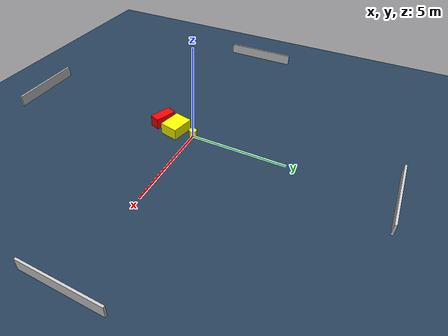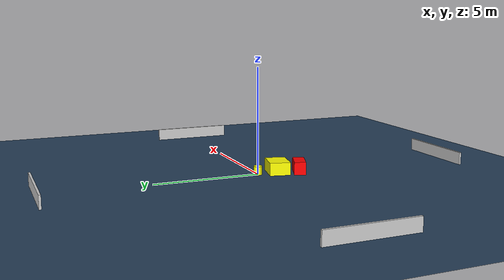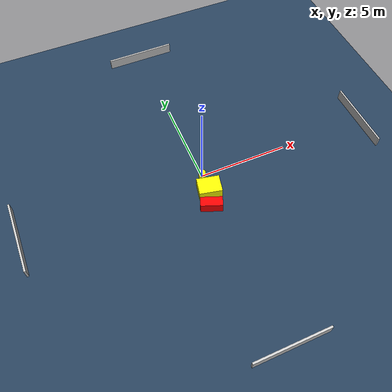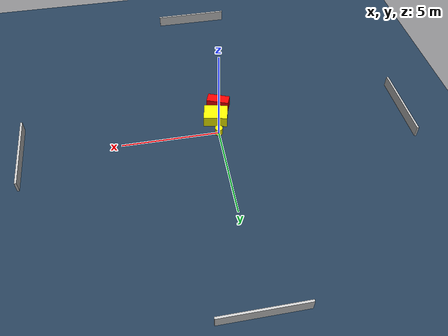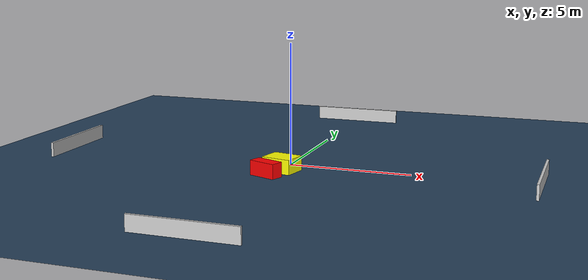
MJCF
<?xml version="1.0" ?>
<mujoco model="generated_environment">
  <option timestep="0.01" integrator="RK4" cone="elliptic"/>
  <default>
    <geom density="1"/>
  </default>
  <asset>
    <texture builtin="gradient" height="3072" name="skybox" rgb1="0.3 0.5 0.7" rgb2="0 0 0" type="skybox" width="512"/>
    <texture builtin="checker" height="300" name="groundplane" rgb1="0.2 0.3 0.4" rgb2="0.1 0.2 0.3" type="2d" width="300"/>
    <material name="groundplane" reflectance="0.2" texrepeat="5 5" texture="groundplane"/>
  </asset>
  <worldbody>
    <light dir="0 0 -1" directional="true" pos="0 0 1.5"/>
    <geom condim="3" friction="0.5 0.005 0.001" material="groundplane" name="floor" pos="0 0 0" size="0 0 0.05" type="plane"/>
    <body name="walls">
      <geom name="wall_1" condim="4" pos="-10.0 0.0 0.3" rgba="0.800000011920929 0.800000011920929 0.800000011920929 1.0" size="0.05 2.0 0.3" type="box"/>
      <geom name="wall_2" condim="4" pos="10.0 0.0 0.3" rgba="0.800000011920929 0.800000011920929 0.800000011920929 1.0" size="0.05 2.0 0.3" type="box"/>
      <geom name="wall_3" condim="4" pos="0.0 -10.0 0.3" rgba="0.800000011920929 0.800000011920929 0.800000011920929 1.0" size="2.0 0.05 0.3" type="box"/>
      <geom name="wall_4" condim="4" pos="0.0 10.0 0.3" rgba="0.800000011920929 0.800000011920929 0.800000011920929 1.0" size="2.0 0.05 0.3" type="box"/>
    </body>
    <body name="robot">
      <joint name="joint_x" type="slide" pos="0 0 0" axis="1 0 0"/>
      <joint name="joint_y" type="slide" pos="0 0 0" axis="0 1 0"/>
      <geom name="robot" type="cylinder" pos="0.0 0.0 0.2" size="0.2 0.2 0.0" mass="5.0" friction="1.0 0.005 0.0001" condim="4" rgba="1.0 1.0 0.0 1.0"/>
    </body>
    <body name="obstacle_1_movable">
      <geom name="obstacle_1_movable" condim="4" pos="-0.013430606769012293 -0.9970903611508491 0.3" euler="0 0 77.80032405967495" friction="0.0 0.005 0.001" rgba="1.0 1.0 0.0 1.0" size="0.4842747142242232 0.618968376356784 0.3" type="box" mass="0.1"/>
      <joint type="free"/>
    </body>
    <body name="obstacle_2_static">
      <geom name="obstacle_2_static" condim="4" pos="-0.31942335620968954 -1.9730876716468584 0.3" euler="0 0 338.79131145793883" friction="0.0 0.005 0.001" rgba="1.0 0.0 0.0 1.0" size="0.5878203919756374 0.27031034805270315 0.3" type="box"/>
    </body>
  </worldbody>
  <actuator>
    <motor name="actuator_x" joint="joint_x" gear="1" ctrlrange="-1 1"/>
    <motor name="actuator_y" joint="joint_y" gear="1" ctrlrange="-1 1"/>
  </actuator>
</mujoco>
